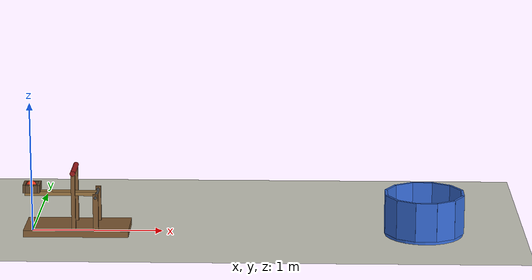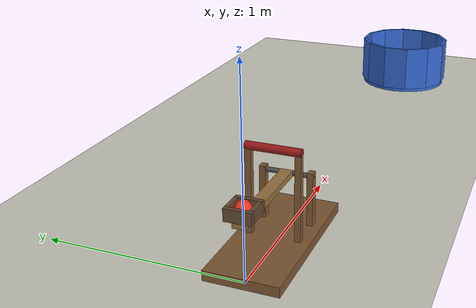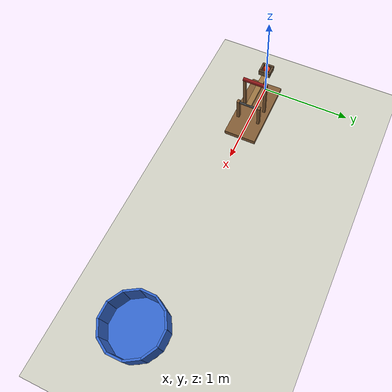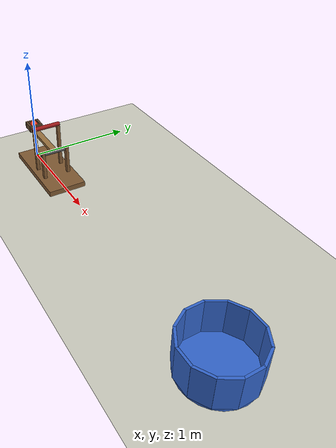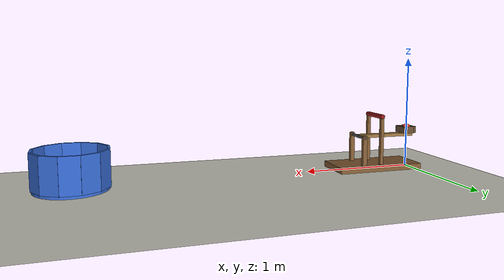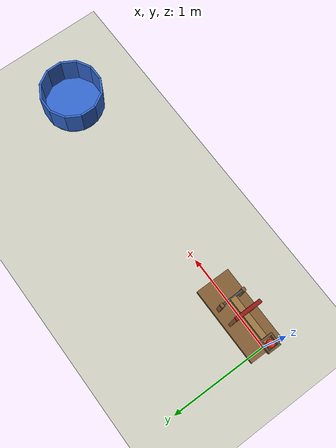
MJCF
<mujoco model="catapult_bucket">
  <compiler angle="degree"/>
  <option timestep="0.002" gravity="0 0 -9.81"/>
  <worldbody>
    <light name="sun" pos="1.5 -2 4" dir="0 0.4 -1" directional="true"/>
    <geom name="floor" type="plane" size="6 3 0.1" rgba="0.8 0.8 0.75 1"/>

    <body name="catapult_frame" pos="0 0 0">
      <geom name="catapult_base" type="box" pos="0.35 0 0.025" size="0.4 0.18 0.025" rgba="0.5 0.35 0.2 1"/>
      <geom name="catapult_upright_left" type="box" pos="0.5 0.12 0.185" size="0.02 0.015 0.135" contype="0" conaffinity="0" rgba="0.5 0.35 0.2 1"/>
      <geom name="catapult_upright_right" type="box" pos="0.5 -0.12 0.185" size="0.02 0.015 0.135" contype="0" conaffinity="0" rgba="0.5 0.35 0.2 1"/>
      <geom name="catapult_axle" type="cylinder" pos="0.5 0 0.3" euler="90 0 0" size="0.012 0.135" contype="0" conaffinity="0" rgba="0.3 0.3 0.3 1"/>
      <geom name="catapult_stop_post_left" type="box" pos="0.331 0.12 0.27" size="0.015 0.015 0.22" contype="0" conaffinity="0" rgba="0.5 0.35 0.2 1"/>
      <geom name="catapult_stop_post_right" type="box" pos="0.331 -0.12 0.27" size="0.015 0.015 0.22" contype="0" conaffinity="0" rgba="0.5 0.35 0.2 1"/>
      <geom name="catapult_stop_bar" type="cylinder" pos="0.331 0 0.4875" euler="90 0 0" size="0.02 0.135" contype="0" conaffinity="0" rgba="0.6 0.1 0.1 1"/>
    </body>

    <body name="catapult_arm" pos="0.5 0 0.3">
      <joint name="catapult_hinge" type="hinge" axis="0 1 0" range="0 40" limited="true" solreflimit="0.005 1"/>
      <geom name="catapult_arm_beam" type="box" pos="-0.275 0 0" size="0.275 0.03 0.015" mass="0.3" contype="0" conaffinity="0" rgba="0.6 0.45 0.25 1"/>
      <geom name="catapult_cup_outer" type="box" pos="-0.55 0 0.045" size="0.01 0.065 0.03" mass="0.02" contype="0" conaffinity="0" rgba="0.4 0.3 0.2 1"/>
      <geom name="catapult_cup_inner" type="box" pos="-0.44 0 0.045" size="0.01 0.065 0.03" mass="0.02" contype="0" conaffinity="0" rgba="0.4 0.3 0.2 1"/>
      <geom name="catapult_cup_side_left" type="box" pos="-0.495 0.055 0.045" size="0.045 0.01 0.03" mass="0.02" contype="0" conaffinity="0" rgba="0.4 0.3 0.2 1"/>
      <geom name="catapult_cup_side_right" type="box" pos="-0.495 -0.055 0.045" size="0.045 0.01 0.03" mass="0.02" contype="0" conaffinity="0" rgba="0.4 0.3 0.2 1"/>
    </body>

    <body name="ball" pos="0 0 0.355">
      <freejoint name="ball_free"/>
      <geom name="ball" type="sphere" size="0.04" mass="0.05" condim="6" friction="0.8 0.005 0.002" solref="0.005 1" rgba="0.9 0.2 0.1 1"/>
    </body>

    <body name="bucket" pos="3 0 0">
      <geom name="bucket_bottom" type="cylinder" pos="0 0 -0.03" size="0.3 0.05" solref="0.005 1" rgba="0.2 0.4 0.8 1"/>
      <geom name="bucket_wall_00" type="box" pos="0.29 0 0.17" euler="0 0 0" size="0.01 0.08 0.15" solref="0.005 1" rgba="0.2 0.4 0.8 1"/>
      <geom name="bucket_wall_01" type="box" pos="0.2511 0.145 0.17" euler="0 0 30" size="0.01 0.08 0.15" solref="0.005 1" rgba="0.2 0.4 0.8 1"/>
      <geom name="bucket_wall_02" type="box" pos="0.145 0.2511 0.17" euler="0 0 60" size="0.01 0.08 0.15" solref="0.005 1" rgba="0.2 0.4 0.8 1"/>
      <geom name="bucket_wall_03" type="box" pos="0 0.29 0.17" euler="0 0 90" size="0.01 0.08 0.15" solref="0.005 1" rgba="0.2 0.4 0.8 1"/>
      <geom name="bucket_wall_04" type="box" pos="-0.145 0.2511 0.17" euler="0 0 120" size="0.01 0.08 0.15" solref="0.005 1" rgba="0.2 0.4 0.8 1"/>
      <geom name="bucket_wall_05" type="box" pos="-0.2511 0.145 0.17" euler="0 0 150" size="0.01 0.08 0.15" solref="0.005 1" rgba="0.2 0.4 0.8 1"/>
      <geom name="bucket_wall_06" type="box" pos="-0.29 0 0.17" euler="0 0 180" size="0.01 0.08 0.15" solref="0.005 1" rgba="0.2 0.4 0.8 1"/>
      <geom name="bucket_wall_07" type="box" pos="-0.2511 -0.145 0.17" euler="0 0 210" size="0.01 0.08 0.15" solref="0.005 1" rgba="0.2 0.4 0.8 1"/>
      <geom name="bucket_wall_08" type="box" pos="-0.145 -0.2511 0.17" euler="0 0 240" size="0.01 0.08 0.15" solref="0.005 1" rgba="0.2 0.4 0.8 1"/>
      <geom name="bucket_wall_09" type="box" pos="0 -0.29 0.17" euler="0 0 270" size="0.01 0.08 0.15" solref="0.005 1" rgba="0.2 0.4 0.8 1"/>
      <geom name="bucket_wall_10" type="box" pos="0.145 -0.2511 0.17" euler="0 0 300" size="0.01 0.08 0.15" solref="0.005 1" rgba="0.2 0.4 0.8 1"/>
      <geom name="bucket_wall_11" type="box" pos="0.2511 -0.145 0.17" euler="0 0 330" size="0.01 0.08 0.15" solref="0.005 1" rgba="0.2 0.4 0.8 1"/>
    </body>
  </worldbody>

  <contact>
    <pair name="pair_ball_beam" geom1="ball" geom2="catapult_arm_beam" condim="3" friction="0.8 0.8 0.005 0.0001 0.0001" solref="0.004 1"/>
    <pair name="pair_ball_cup_outer" geom1="ball" geom2="catapult_cup_outer" condim="1" solref="0.004 1"/>
    <pair name="pair_ball_cup_inner" geom1="ball" geom2="catapult_cup_inner" condim="1" solref="0.004 1"/>
    <pair name="pair_ball_cup_left" geom1="ball" geom2="catapult_cup_side_left" condim="1" solref="0.004 1"/>
    <pair name="pair_ball_cup_right" geom1="ball" geom2="catapult_cup_side_right" condim="1" solref="0.004 1"/>
  </contact>

  <actuator>
    <motor name="catapult_motor" joint="catapult_hinge" gear="1" ctrllimited="true" ctrlrange="0 10"/>
  </actuator>

  <keyframe>
    <key name="start" ctrl="5.65"/>
  </keyframe>
</mujoco>
